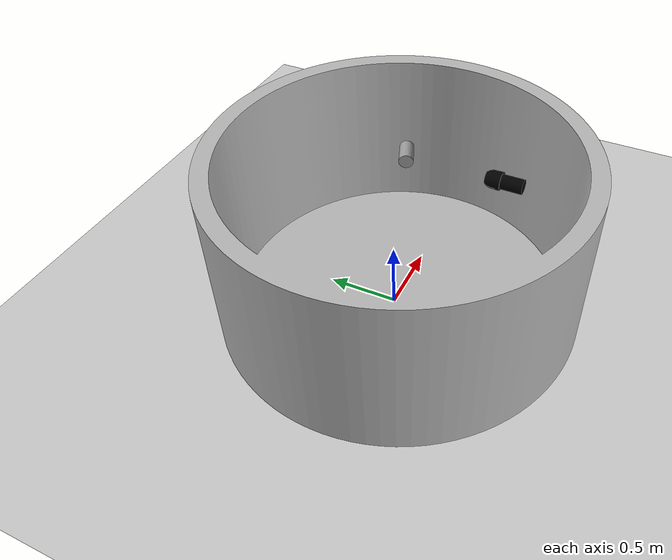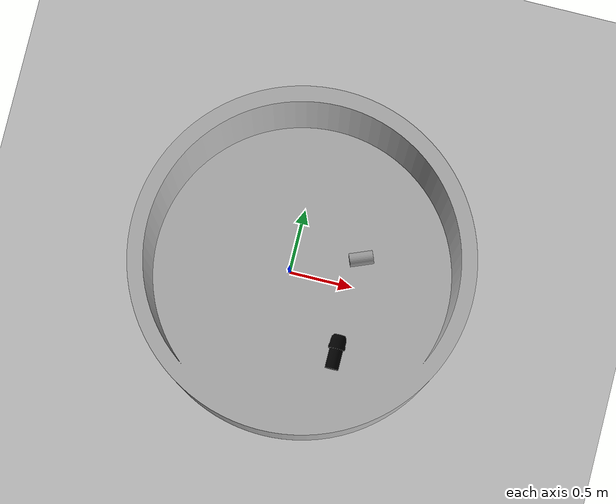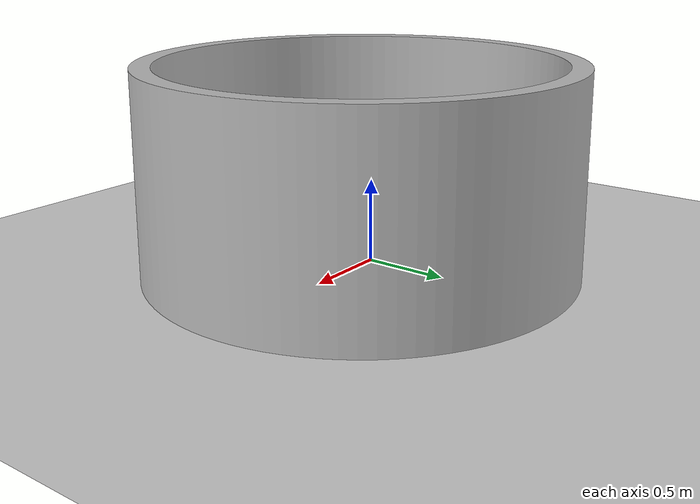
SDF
<?xml version="1.0" ?>
<sdf version="1.6">
  <world name="default">
    <include>
      <uri>model://ground_plane</uri>
    </include>
    <include>
      <uri>model://sun</uri>
    </include>

    <gui>
      <camera name='user_camera'>
        <pose>2.52 -2.65 3.73 0 0.66 2.42</pose>
      </camera>
    </gui>

    <!-- basement tank -->
    <include>
      <uri>model://cylinder_sonar_tank</uri>
      <name>cylinder_sonar_tank</name>
      <pose>0.10 0.0 0 0 0 0</pose>
      <static>true</static>
    </include>

    <!-- cylinder target -->
    <!-- 22 deg -->
    <include>
      <uri>model://uw_apl_rod</uri>
      <pose>0.518 0.1408 0.9144 0 1.5709 0.383972</pose>
      <static>true</static>
    </include>

    <!-- Oculus m1200d -->
    <!-- Sonar placed at 12" below water surface, 20" from the sonar tank wall -->
    <!-- zero roll and pitch, the water is ~48" deep -->
    <include>
      <uri>model://oculus_m1200d_nps_multibeam_LF</uri>
      <name>oculus_m1200d</name>
      <pose>0.5 -0.5 0.9144 0 0 1.5709</pose>
      <static>true</static>
    </include>

  </world>
</sdf>

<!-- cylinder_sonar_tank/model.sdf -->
<sdf version="1.6">
  <model name="cylinder_sonar_tank">
    <link name="link">
      <inertial>
        <pose>0 0 0 0 0 0</pose>
        <mass>1000.0</mass>
        <inertia>
          <ixx>0.083</ixx>
          <ixy>0.0</ixy>
          <ixz>0.0</ixz>
          <iyy>0.083</iyy>
          <iyz>0.0</iyz>
          <izz>0.083</izz>
        </inertia>
      </inertial>
      <collision name="collision">
        <geometry>
          <mesh>
            <uri>model://cylinder_sonar_tank/meshes/cylinder_sonar_tank.stl</uri>
            <!-- inner diameter of 92". The water is ~48" deep -->
            <scale>1.1684 1.1684 0.6096</scale>
          </mesh>
        </geometry>
      </collision>
      <visual name="visual">
        <geometry>
          <mesh>
            <uri>model://cylinder_sonar_tank/meshes/COLLISION_cylinder_sonar_tank.stl</uri>
            <!-- inner diameter of 92". The water is ~48" deep -->
            <scale>1.1684 1.1684 0.6096</scale>
          </mesh>
        </geometry>
      </visual>
    </link>
  </model>
</sdf>

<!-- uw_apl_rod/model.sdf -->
<sdf version="1.6">
  <model name ='uw_apl_rod'>
    <link name='link'>
      <inertial>
        <mass>1</mass>
        <inertia>
          <ixx>0.145833</ixx>
          <ixy>0</ixy>
          <ixz>0</ixz>
          <iyy>0.145833</iyy>
          <iyz>0</iyz>
          <izz>0.125</izz>
        </inertia>
        <pose frame=''>0 0 0 0 0 0</pose>
      </inertial>
      <collision name='cylinder'>
        <geometry>
          <cylinder>
            <radius>0.0508</radius>
            <length>0.1778</length>
          </cylinder>
        </geometry>
      </collision>
      <visual name='visual'>
        <geometry>
          <cylinder>
            <radius>0.0508</radius>
            <length>0.1778</length>
          </cylinder>
        </geometry>
        <material>
          <script>
            <name>Gazebo/Grey</name>
            <uri>file://media/materials/scripts/gazebo.material</uri>
          </script>
        </material>
      </visual>
      <self_collide>0</self_collide>
      <enable_wind>0</enable_wind>
      <kinematic>0</kinematic>
    </link>
  </model>
</sdf>

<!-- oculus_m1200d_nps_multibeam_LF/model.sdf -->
<sdf version="1.6">
  <model name="oculus_m1200d">
    <link name="forward_sonar_link">
      <inertial>
        <pose>0 0 0 0 0 0</pose>
        <mass>4.35</mass>
        <inertia>
          <ixx>0.0360</ixx>          <!-- 1/12ml^2 -->
          <ixy>0</ixy>
          <ixz>0</ixz>
          <iyy>0</iyy>
          <iyz>0</iyz>
          <izz>0.0360</izz>
        </inertia>
      </inertial>
      <collision name="collision">
        <geometry>
          <mesh>
            <uri>model://oculus_m1200d_nps_multibeam_LF/meshes/COLLISION-p900.dae</uri>
          </mesh>
        </geometry>
      </collision>
      <visual name="visual">
        <geometry>
          <mesh>
            <uri>model://oculus_m1200d_nps_multibeam_LF/meshes/p900.dae</uri>
          </mesh>
        </geometry>
        <material> <!-- bright material -->
          <ambient>0 0 0 1</ambient>
          <diffuse>0 0 0 1</diffuse>
          <specular>0 0 0 0</specular>
          <emissive>0.2 0.2 1.0 1</emissive>
        </material>
      </visual>

      <sensor name="image_sonar" type="depth">
        <visualize>true</visualize>
        <always_on>true</always_on>
        <update_rate>10</update_rate>
        <camera>
          <!-- 130 degrees for the oculus-m1200d at 1.2MHz mode -->
          <horizontal_fov>2.26893</horizontal_fov>
          <image>
            <width>512</width>
            <!-- Set vertical FOV by setting image height -->
            <!-- For 20 deg. -->
            <height>79</height>
            <format>R8G8B8</format>
          </image>
          <clip>
            <near>0.01</near>            <!-- optimal 2m-60m -->
            <far>30</far>
          </clip>
          <depth_camera>
            <output>depths</output>
          </depth_camera>
          <save enabled="false">
            <path>/tmp/camera</path>
          </save>
        </camera>
        <plugin filename="libnps_multibeam_sonar_ros_plugin.so" name="forward_sonar">
          <!-- Sonar properties -->
          <sonarFreq>1200e3</sonarFreq>
          <bandwidth>265.5e3</bandwidth>
          <soundSpeed>1500</soundSpeed>
          <sourceLevel>170</sourceLevel>
          <maxDistance>2</maxDistance>
          <constantReflectivity>false</constantReflectivity>
          <!-- The CSV databsefile is located at the worlds folder -->
          <reflectivityDatabaseFile>variationalReflectivityDatabase_APL.csv</reflectivityDatabaseFile>
          <sensorGain>0.2</sensorGain>
          <plotScaler>1.5</plotScaler>
          <writeLog>true</writeLog>
          <debugFlag>false</debugFlag>
          <writeFrameInterval>5</writeFrameInterval>
          <!-- This name is prepended to ROS topics -->
          <cameraName>oculus_m1200d</cameraName>
          <!-- ROS publication topics -->
          <imageTopicName>image_raw</imageTopicName>
          <cameraInfoTopicName>image_raw/camera_info</cameraInfoTopicName>
          <pointCloudTopicName>point_cloud</pointCloudTopicName>
          <depthImageTopicName>image_depth</depthImageTopicName>
          <depthImageCameraInfoTopicName>image_depth/camera_info</depthImageCameraInfoTopicName>
          <sonarImageRawTopicName>sonar_image_raw</sonarImageRawTopicName>
          <sonarImageTopicName>sonar_image</sonarImageTopicName>
          <frameName>forward_sonar_optical_link</frameName>
        </plugin>
      </sensor>
    </link>

    <link name="forward_sonar_beam_visual_link">
      <inertial>
        <pose>0 0 0 0 0 0</pose>
        <mass>0.0001</mass>
        <inertia>
          <ixx>0.0000000017</ixx>          <!-- 1/12ml^2 -->
          <ixy>0</ixy>
          <ixz>0</ixz>
          <iyy>0.00000000017</iyy>
          <iyz>0</iyz>
          <izz>0.00000000017</izz>
        </inertia>
      </inertial>
      <sensor type="ray" name="forward_sonar_beam_visual">
        <pose>0 0 0 0 0 0</pose>
        <update_rate>5</update_rate>
        <visualize>true</visualize>
        <ray>
          <scan>
            <horizontal>
              <samples>100</samples>
              <resolution>1</resolution>
              <min_angle>-1.13446</min_angle>
              <max_angle>1.13446</max_angle>
            </horizontal>
            <vertical>
              <samples>3</samples>
              <resolution>1</resolution>
              <min_angle>-0.174533</min_angle>
              <max_angle>0.174533</max_angle>
            </vertical>
          </scan>
          <range>
            <min>0.2</min>
            <max>30</max>
            <resolution>0.01</resolution>
          </range>
        </ray>
      </sensor>
    </link>

    <joint name="forward_sonar_beam_visual_joint" type="fixed">
      <pose>0 0 0 0 0 0</pose>
      <parent>forward_sonar_link</parent>
      <child>forward_sonar_beam_visual_link</child>
    </joint>
  </model>
</sdf>
